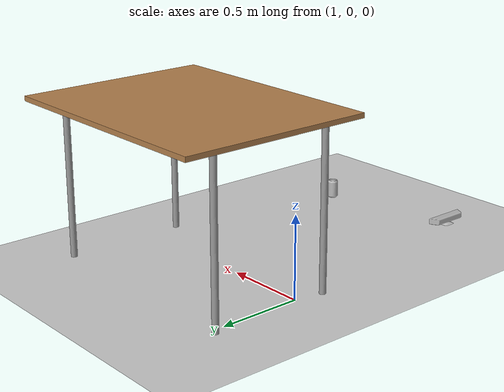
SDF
<sdf version="1.6">
 <world name="default">
  <model name="ground_plane">
   <static>1</static>
   <link name="link">
    <collision name="collision">
     <geometry><plane><normal>0 0 1</normal><size>100 100</size></plane></geometry>
     <surface><friction><ode><mu>100</mu><mu2>50</mu2></ode></friction></surface>
    </collision>
    <visual name="visual">
     <cast_shadows>0</cast_shadows>
     <geometry><plane><normal>0 0 1</normal><size>100 100</size></plane></geometry>
     <material>
      <script><uri>file://media/materials/scripts/gazebo.material</uri><name>Gazebo/Grey</name></script>
     </material>
    </visual>
   </link>
  </model>
  <gravity>0 0 -9.8</gravity>
  <magnetic_field>6e-06 2.3e-05 -4.2e-05</magnetic_field>
  <atmosphere type="adiabatic"/>
  <physics name="default_physics" default="0" type="ode">
   <max_step_size>0.001</max_step_size>
   <real_time_factor>1</real_time_factor>
   <real_time_update_rate>1000</real_time_update_rate>
  </physics>
  <scene><ambient>0.4 0.4 0.4 1</ambient><background>0.7 0.7 0.7 1</background><shadows>1</shadows></scene>
  <spherical_coordinates>
   <surface_model>EARTH_WGS84</surface_model>
   <latitude_deg>0</latitude_deg>
   <longitude_deg>0</longitude_deg>
   <elevation>0</elevation>
   <heading_deg>0</heading_deg>
  </spherical_coordinates>
  <model name="IMR_table">
   <static>1</static>
   <link name="link">
    <collision name="surface">
     <pose>0 0 1 0 -0 0</pose>
     <geometry><box><size>1.5 1.2 0.03</size></box></geometry>
     <surface><friction><ode><mu>0.6</mu><mu2>0.6</mu2></ode></friction></surface>
    </collision>
    <visual name="visual1">
     <pose>0 0 1 0 -0 0</pose>
     <geometry><box><size>1.5 1.2 0.03</size></box></geometry>
     <material>
      <script>
       <uri>model://IMR_table/materials/scripts/</uri>
       <uri>model://IMR_table/materials/textures/</uri>
       <name>LIGHTWOOD</name>
      </script>
     </material>
    </visual>
    <collision name="front_left_leg">
     <pose>0.68 0.38 0.5 0 -0 0</pose>
     <geometry><cylinder><radius>0.02</radius><length>1</length></cylinder></geometry>
    </collision>
    <visual name="front_left_leg">
     <pose>0.68 0.38 0.5 0 -0 0</pose>
     <geometry><cylinder><radius>0.02</radius><length>1</length></cylinder></geometry>
     <material>
      <script><uri>file://media/materials/scripts/gazebo.material</uri><name>Gazebo/Grey</name></script>
     </material>
    </visual>
    <collision name="front_right_leg">
     <pose>0.68 -0.38 0.5 0 -0 0</pose>
     <geometry><cylinder><radius>0.02</radius><length>1</length></cylinder></geometry>
    </collision>
    <visual name="front_right_leg">
     <pose>0.68 -0.38 0.5 0 -0 0</pose>
     <geometry><cylinder><radius>0.02</radius><length>1</length></cylinder></geometry>
     <material>
      <script><uri>file://media/materials/scripts/gazebo.material</uri><name>Gazebo/Grey</name></script>
     </material>
    </visual>
    <collision name="back_right_leg">
     <pose>-0.68 -0.38 0.5 0 -0 0</pose>
     <geometry><cylinder><radius>0.02</radius><length>1</length></cylinder></geometry>
    </collision>
    <visual name="back_right_leg">
     <pose>-0.68 -0.38 0.5 0 -0 0</pose>
     <geometry><cylinder><radius>0.02</radius><length>1</length></cylinder></geometry>
     <material>
      <script><uri>file://media/materials/scripts/gazebo.material</uri><name>Gazebo/Grey</name></script>
     </material>
    </visual>
    <collision name="back_left_leg">
     <pose>-0.68 0.38 0.5 0 -0 0</pose>
     <geometry><cylinder><radius>0.02</radius><length>1</length></cylinder></geometry>
    </collision>
    <visual name="back_left_leg">
     <pose>-0.68 0.38 0.5 0 -0 0</pose>
     <geometry><cylinder><radius>0.02</radius><length>1</length></cylinder></geometry>
     <material>
      <script><uri>file://media/materials/scripts/gazebo.material</uri><name>Gazebo/Grey</name></script>
     </material>
    </visual>
   </link>
   <pose>1.65056 0.199055 0 0 -0 0</pose>
  </model>
  <model name="coca_cola">
   <link name="link">
    <pose>0 0 0.115 0 -0 0</pose>
    <inertial>
     <mass>0.39</mass>
     <inertia><ixx>0.00058</ixx><ixy>0</ixy><ixz>0</ixz><iyy>0.00058</iyy><iyz>0</iyz><izz>0.00019</izz></inertia>
    </inertial>
    <collision name="collision">
     <geometry><cylinder><radius>0.0301625</radius><length>0.12065</length></cylinder></geometry>
    </collision>
    <visual name="bodyMesh">
     <geometry><mesh><uri>model://coca_cola/meshes/coke.dae</uri><scale>1 1 1</scale></mesh></geometry>
    </visual>
   </link>
   <pose>2.08872 -1.34288 -0.054676 1.8e-05 1.6e-05 0.06445</pose>
  </model>
  <model name="kinect_ros">
   <static>1</static>
   <pose>1.27273 -1.54654 0.036 0 -0 0</pose>
   <link name="link">
    <inertial><mass>0.1</mass></inertial>
    <collision name="collision"><geometry><box><size>0.073 0.276 0.072</size></box></geometry></collision>
    <visual name="visual"><geometry><mesh><uri>model://kinect/meshes/kinect.dae</uri></mesh></geometry></visual>
    <sensor name="camera" type="depth">
     <update_rate>20</update_rate>
     <camera name="__default__">
      <horizontal_fov>1.0472</horizontal_fov>
      <image><width>640</width><height>480</height><format>R8G8B8</format></image>
      <clip><near>0.05</near><far>3</far></clip>
     </camera>
     <plugin name="camera_plugin" filename="libgazebo_ros_openni_kinect.so">
      <baseline>0.2</baseline>
      <alwaysOn>true</alwaysOn>
      <updateRate>0.0</updateRate>
      <cameraName>camera_ir</cameraName>
      <imageTopicName>/camera/color/image_raw</imageTopicName>
      <cameraInfoTopicName>/camera/color/camera_info</cameraInfoTopicName>
      <depthImageTopicName>/camera/depth/image_raw</depthImageTopicName>
      <depthImageCameraInfoTopicName>/camera/depth/camera_info</depthImageCameraInfoTopicName>
      <pointCloudTopicName>/camera/depth/points</pointCloudTopicName>
      <frameName>camera_link</frameName>
      <pointCloudCutoff>0.5</pointCloudCutoff>
      <pointCloudCutoffMax>3.0</pointCloudCutoffMax>
      <distortionK1>0</distortionK1>
      <distortionK2>0</distortionK2>
      <distortionK3>0</distortionK3>
      <distortionT1>0</distortionT1>
      <distortionT2>0</distortionT2>
      <CxPrime>0</CxPrime>
      <Cx>0</Cx>
      <Cy>0</Cy>
      <focalLength>0</focalLength>
      <hackBaseline>0</hackBaseline>
     </plugin>
    </sensor>
   </link>
  </model>
 </world>
</sdf>
